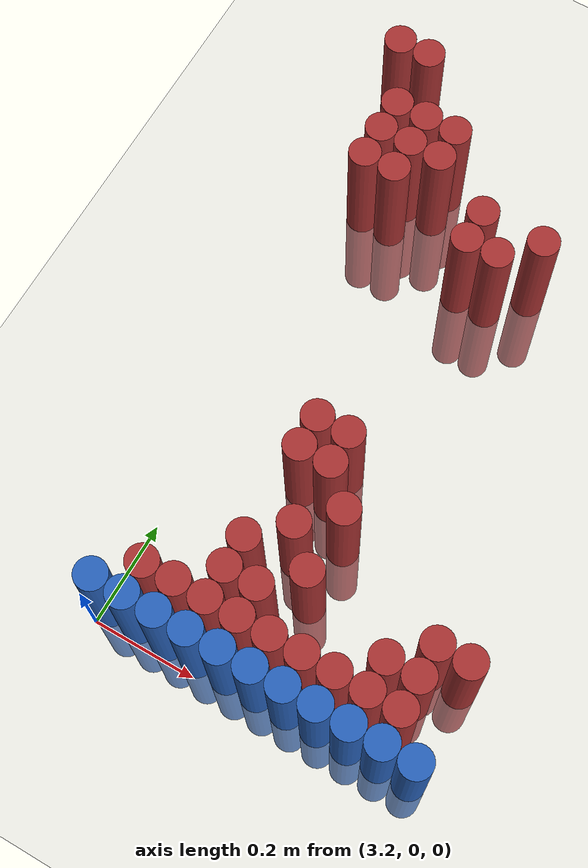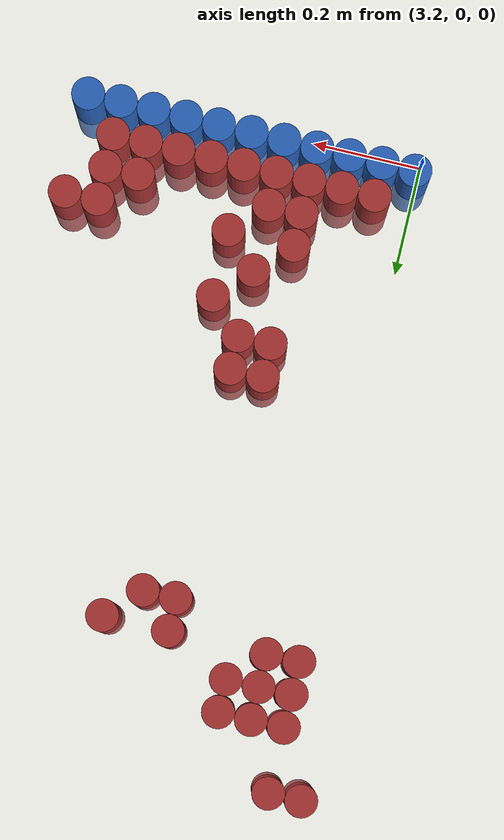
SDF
<sdf version="1.6">
 <world name="default">
  <model name="ground_plane">
   <static>1</static>
   <link name="link">
    <collision name="collision">
     <geometry><plane><normal>0 0 1</normal><size>100 100</size></plane></geometry>
     <surface><friction><ode><mu>100</mu><mu2>50</mu2></ode></friction></surface>
    </collision>
    <visual name="visual">
     <cast_shadows>0</cast_shadows>
     <geometry><plane><normal>0 0 1</normal><size>100 100</size></plane></geometry>
     <material>
      <script><uri>file://media/materials/scripts/gazebo.material</uri><name>Gazebo/Grey</name></script>
     </material>
    </visual>
   </link>
  </model>
  <model name="unit_cylinder_217">
   <static>1</static>
   <pose>3.150000 1.170000 0.000000 0.000000 0.000000 0.000000</pose>
   <link name="link">
    <inertial>
     <mass>1</mass>
     <inertia><ixx>0.145833</ixx><ixy>0</ixy><ixz>0</ixz><iyy>0.145833</iyy><iyz>0</iyz><izz>0.125</izz></inertia>
    </inertial>
    <collision name="collision">
     <geometry><cylinder><radius>0.030000</radius><length>0.5</length></cylinder></geometry>
    </collision>
    <visual name="visual">
     <geometry><cylinder><radius>0.030000</radius><length>0.5</length></cylinder></geometry>
     <material>
      <ambient>0.648000 0.192000 0.192000 1</ambient>
      <diffuse>0.648000 0.192000 0.192000 1</diffuse>
     </material>
     <material>
      <script><name>Gazebo/Grey</name><uri>file://media/materials/scripts/gazebo.material</uri></script>
     </material>
    </visual>
   </link>
  </model>
  <model name="unit_cylinder_218">
   <static>1</static>
   <pose>3.210000 1.170000 0.000000 0.000000 0.000000 0.000000</pose>
   <link name="link">
    <inertial>
     <mass>1</mass>
     <inertia><ixx>0.145833</ixx><ixy>0</ixy><ixz>0</ixz><iyy>0.145833</iyy><iyz>0</iyz><izz>0.125</izz></inertia>
    </inertial>
    <collision name="collision">
     <geometry><cylinder><radius>0.030000</radius><length>0.5</length></cylinder></geometry>
    </collision>
    <visual name="visual">
     <geometry><cylinder><radius>0.030000</radius><length>0.5</length></cylinder></geometry>
     <material>
      <ambient>0.648000 0.192000 0.192000 1</ambient>
      <diffuse>0.648000 0.192000 0.192000 1</diffuse>
     </material>
     <material>
      <script><name>Gazebo/Grey</name><uri>file://media/materials/scripts/gazebo.material</uri></script>
     </material>
    </visual>
   </link>
  </model>
  <model name="unit_cylinder_227">
   <static>1</static>
   <pose>3.210000 1.050000 0.000000 0.000000 0.000000 0.000000</pose>
   <link name="link">
    <inertial>
     <mass>1</mass>
     <inertia><ixx>0.145833</ixx><ixy>0</ixy><ixz>0</ixz><iyy>0.145833</iyy><iyz>0</iyz><izz>0.125</izz></inertia>
    </inertial>
    <collision name="collision">
     <geometry><cylinder><radius>0.030000</radius><length>0.5</length></cylinder></geometry>
    </collision>
    <visual name="visual">
     <geometry><cylinder><radius>0.030000</radius><length>0.5</length></cylinder></geometry>
     <material>
      <ambient>0.648000 0.192000 0.192000 1</ambient>
      <diffuse>0.648000 0.192000 0.192000 1</diffuse>
     </material>
     <material>
      <script><name>Gazebo/Grey</name><uri>file://media/materials/scripts/gazebo.material</uri></script>
     </material>
    </visual>
   </link>
  </model>
  <model name="unit_cylinder_228">
   <static>1</static>
   <pose>3.270000 1.050000 0.000000 0.000000 0.000000 0.000000</pose>
   <link name="link">
    <inertial>
     <mass>1</mass>
     <inertia><ixx>0.145833</ixx><ixy>0</ixy><ixz>0</ixz><iyy>0.145833</iyy><iyz>0</iyz><izz>0.125</izz></inertia>
    </inertial>
    <collision name="collision">
     <geometry><cylinder><radius>0.030000</radius><length>0.5</length></cylinder></geometry>
    </collision>
    <visual name="visual">
     <geometry><cylinder><radius>0.030000</radius><length>0.5</length></cylinder></geometry>
     <material>
      <ambient>0.648000 0.192000 0.192000 1</ambient>
      <diffuse>0.648000 0.192000 0.192000 1</diffuse>
     </material>
     <material>
      <script><name>Gazebo/Grey</name><uri>file://media/materials/scripts/gazebo.material</uri></script>
     </material>
    </visual>
   </link>
  </model>
  <model name="unit_cylinder_229">
   <static>1</static>
   <pose>3.330000 1.050000 0.000000 0.000000 0.000000 0.000000</pose>
   <link name="link">
    <inertial>
     <mass>1</mass>
     <inertia><ixx>0.145833</ixx><ixy>0</ixy><ixz>0</ixz><iyy>0.145833</iyy><iyz>0</iyz><izz>0.125</izz></inertia>
    </inertial>
    <collision name="collision">
     <geometry><cylinder><radius>0.030000</radius><length>0.5</length></cylinder></geometry>
    </collision>
    <visual name="visual">
     <geometry><cylinder><radius>0.030000</radius><length>0.5</length></cylinder></geometry>
     <material>
      <ambient>0.648000 0.192000 0.192000 1</ambient>
      <diffuse>0.648000 0.192000 0.192000 1</diffuse>
     </material>
     <material>
      <script><name>Gazebo/Grey</name><uri>file://media/materials/scripts/gazebo.material</uri></script>
     </material>
    </visual>
   </link>
  </model>
  <model name="unit_cylinder_231">
   <static>1</static>
   <pose>3.210000 0.990000 0.000000 0.000000 0.000000 0.000000</pose>
   <link name="link">
    <inertial>
     <mass>1</mass>
     <inertia><ixx>0.145833</ixx><ixy>0</ixy><ixz>0</ixz><iyy>0.145833</iyy><iyz>0</iyz><izz>0.125</izz></inertia>
    </inertial>
    <collision name="collision">
     <geometry><cylinder><radius>0.030000</radius><length>0.5</length></cylinder></geometry>
    </collision>
    <visual name="visual">
     <geometry><cylinder><radius>0.030000</radius><length>0.5</length></cylinder></geometry>
     <material>
      <ambient>0.648000 0.192000 0.192000 1</ambient>
      <diffuse>0.648000 0.192000 0.192000 1</diffuse>
     </material>
     <material>
      <script><name>Gazebo/Grey</name><uri>file://media/materials/scripts/gazebo.material</uri></script>
     </material>
    </visual>
   </link>
  </model>
  <model name="unit_cylinder_232">
   <static>1</static>
   <pose>3.270000 0.990000 0.000000 0.000000 0.000000 0.000000</pose>
   <link name="link">
    <inertial>
     <mass>1</mass>
     <inertia><ixx>0.145833</ixx><ixy>0</ixy><ixz>0</ixz><iyy>0.145833</iyy><iyz>0</iyz><izz>0.125</izz></inertia>
    </inertial>
    <collision name="collision">
     <geometry><cylinder><radius>0.030000</radius><length>0.5</length></cylinder></geometry>
    </collision>
    <visual name="visual">
     <geometry><cylinder><radius>0.030000</radius><length>0.5</length></cylinder></geometry>
     <material>
      <ambient>0.648000 0.192000 0.192000 1</ambient>
      <diffuse>0.648000 0.192000 0.192000 1</diffuse>
     </material>
     <material>
      <script><name>Gazebo/Grey</name><uri>file://media/materials/scripts/gazebo.material</uri></script>
     </material>
    </visual>
   </link>
  </model>
  <model name="unit_cylinder_233">
   <static>1</static>
   <pose>3.330000 0.990000 0.000000 0.000000 0.000000 0.000000</pose>
   <link name="link">
    <inertial>
     <mass>1</mass>
     <inertia><ixx>0.145833</ixx><ixy>0</ixy><ixz>0</ixz><iyy>0.145833</iyy><iyz>0</iyz><izz>0.125</izz></inertia>
    </inertial>
    <collision name="collision">
     <geometry><cylinder><radius>0.030000</radius><length>0.5</length></cylinder></geometry>
    </collision>
    <visual name="visual">
     <geometry><cylinder><radius>0.030000</radius><length>0.5</length></cylinder></geometry>
     <material>
      <ambient>0.648000 0.192000 0.192000 1</ambient>
      <diffuse>0.648000 0.192000 0.192000 1</diffuse>
     </material>
     <material>
      <script><name>Gazebo/Grey</name><uri>file://media/materials/scripts/gazebo.material</uri></script>
     </material>
    </visual>
   </link>
  </model>
  <model name="unit_cylinder_235">
   <static>1</static>
   <pose>3.210000 0.930000 0.000000 0.000000 0.000000 0.000000</pose>
   <link name="link">
    <inertial>
     <mass>1</mass>
     <inertia><ixx>0.145833</ixx><ixy>0</ixy><ixz>0</ixz><iyy>0.145833</iyy><iyz>0</iyz><izz>0.125</izz></inertia>
    </inertial>
    <collision name="collision">
     <geometry><cylinder><radius>0.030000</radius><length>0.5</length></cylinder></geometry>
    </collision>
    <visual name="visual">
     <geometry><cylinder><radius>0.030000</radius><length>0.5</length></cylinder></geometry>
     <material>
      <ambient>0.648000 0.192000 0.192000 1</ambient>
      <diffuse>0.648000 0.192000 0.192000 1</diffuse>
     </material>
     <material>
      <script><name>Gazebo/Grey</name><uri>file://media/materials/scripts/gazebo.material</uri></script>
     </material>
    </visual>
   </link>
  </model>
  <model name="unit_cylinder_236">
   <static>1</static>
   <pose>3.270000 0.930000 0.000000 0.000000 0.000000 0.000000</pose>
   <link name="link">
    <inertial>
     <mass>1</mass>
     <inertia><ixx>0.145833</ixx><ixy>0</ixy><ixz>0</ixz><iyy>0.145833</iyy><iyz>0</iyz><izz>0.125</izz></inertia>
    </inertial>
    <collision name="collision">
     <geometry><cylinder><radius>0.030000</radius><length>0.5</length></cylinder></geometry>
    </collision>
    <visual name="visual">
     <geometry><cylinder><radius>0.030000</radius><length>0.5</length></cylinder></geometry>
     <material>
      <ambient>0.648000 0.192000 0.192000 1</ambient>
      <diffuse>0.648000 0.192000 0.192000 1</diffuse>
     </material>
     <material>
      <script><name>Gazebo/Grey</name><uri>file://media/materials/scripts/gazebo.material</uri></script>
     </material>
    </visual>
   </link>
  </model>
  <model name="unit_cylinder_237">
   <static>1</static>
   <pose>3.450000 0.930000 0.000000 0.000000 0.000000 0.000000</pose>
   <link name="link">
    <inertial>
     <mass>1</mass>
     <inertia><ixx>0.145833</ixx><ixy>0</ixy><ixz>0</ixz><iyy>0.145833</iyy><iyz>0</iyz><izz>0.125</izz></inertia>
    </inertial>
    <collision name="collision">
     <geometry><cylinder><radius>0.030000</radius><length>0.5</length></cylinder></geometry>
    </collision>
    <visual name="visual">
     <geometry><cylinder><radius>0.030000</radius><length>0.5</length></cylinder></geometry>
     <material>
      <ambient>0.648000 0.192000 0.192000 1</ambient>
      <diffuse>0.648000 0.192000 0.192000 1</diffuse>
     </material>
     <material>
      <script><name>Gazebo/Grey</name><uri>file://media/materials/scripts/gazebo.material</uri></script>
     </material>
    </visual>
   </link>
  </model>
  <model name="unit_cylinder_238">
   <static>1</static>
   <pose>3.570000 0.930000 0.000000 0.000000 0.000000 0.000000</pose>
   <link name="link">
    <inertial>
     <mass>1</mass>
     <inertia><ixx>0.145833</ixx><ixy>0</ixy><ixz>0</ixz><iyy>0.145833</iyy><iyz>0</iyz><izz>0.125</izz></inertia>
    </inertial>
    <collision name="collision">
     <geometry><cylinder><radius>0.030000</radius><length>0.5</length></cylinder></geometry>
    </collision>
    <visual name="visual">
     <geometry><cylinder><radius>0.030000</radius><length>0.5</length></cylinder></geometry>
     <material>
      <ambient>0.648000 0.192000 0.192000 1</ambient>
      <diffuse>0.648000 0.192000 0.192000 1</diffuse>
     </material>
     <material>
      <script><name>Gazebo/Grey</name><uri>file://media/materials/scripts/gazebo.material</uri></script>
     </material>
    </visual>
   </link>
  </model>
  <model name="unit_cylinder_239">
   <static>1</static>
   <pose>3.450000 0.870000 0.000000 0.000000 0.000000 0.000000</pose>
   <link name="link">
    <inertial>
     <mass>1</mass>
     <inertia><ixx>0.145833</ixx><ixy>0</ixy><ixz>0</ixz><iyy>0.145833</iyy><iyz>0</iyz><izz>0.125</izz></inertia>
    </inertial>
    <collision name="collision">
     <geometry><cylinder><radius>0.030000</radius><length>0.5</length></cylinder></geometry>
    </collision>
    <visual name="visual">
     <geometry><cylinder><radius>0.030000</radius><length>0.5</length></cylinder></geometry>
     <material>
      <ambient>0.648000 0.192000 0.192000 1</ambient>
      <diffuse>0.648000 0.192000 0.192000 1</diffuse>
     </material>
     <material>
      <script><name>Gazebo/Grey</name><uri>file://media/materials/scripts/gazebo.material</uri></script>
     </material>
    </visual>
   </link>
  </model>
  <model name="unit_cylinder_240">
   <static>1</static>
   <pose>3.510000 0.870000 0.000000 0.000000 0.000000 0.000000</pose>
   <link name="link">
    <inertial>
     <mass>1</mass>
     <inertia><ixx>0.145833</ixx><ixy>0</ixy><ixz>0</ixz><iyy>0.145833</iyy><iyz>0</iyz><izz>0.125</izz></inertia>
    </inertial>
    <collision name="collision">
     <geometry><cylinder><radius>0.030000</radius><length>0.5</length></cylinder></geometry>
    </collision>
    <visual name="visual">
     <geometry><cylinder><radius>0.030000</radius><length>0.5</length></cylinder></geometry>
     <material>
      <ambient>0.648000 0.192000 0.192000 1</ambient>
      <diffuse>0.648000 0.192000 0.192000 1</diffuse>
     </material>
     <material>
      <script><name>Gazebo/Grey</name><uri>file://media/materials/scripts/gazebo.material</uri></script>
     </material>
    </visual>
   </link>
  </model>
  <model name="unit_cylinder_262">
   <static>1</static>
   <pose>3.390000 0.450000 0.000000 0.000000 0.000000 0.000000</pose>
   <link name="link">
    <inertial>
     <mass>1</mass>
     <inertia><ixx>0.145833</ixx><ixy>0</ixy><ixz>0</ixz><iyy>0.145833</iyy><iyz>0</iyz><izz>0.125</izz></inertia>
    </inertial>
    <collision name="collision">
     <geometry><cylinder><radius>0.030000</radius><length>0.5</length></cylinder></geometry>
    </collision>
    <visual name="visual">
     <geometry><cylinder><radius>0.030000</radius><length>0.5</length></cylinder></geometry>
     <material>
      <ambient>0.648000 0.192000 0.192000 1</ambient>
      <diffuse>0.648000 0.192000 0.192000 1</diffuse>
     </material>
     <material>
      <script><name>Gazebo/Grey</name><uri>file://media/materials/scripts/gazebo.material</uri></script>
     </material>
    </visual>
   </link>
  </model>
  <model name="unit_cylinder_263">
   <static>1</static>
   <pose>3.450000 0.450000 0.000000 0.000000 0.000000 0.000000</pose>
   <link name="link">
    <inertial>
     <mass>1</mass>
     <inertia><ixx>0.145833</ixx><ixy>0</ixy><ixz>0</ixz><iyy>0.145833</iyy><iyz>0</iyz><izz>0.125</izz></inertia>
    </inertial>
    <collision name="collision">
     <geometry><cylinder><radius>0.030000</radius><length>0.5</length></cylinder></geometry>
    </collision>
    <visual name="visual">
     <geometry><cylinder><radius>0.030000</radius><length>0.5</length></cylinder></geometry>
     <material>
      <ambient>0.648000 0.192000 0.192000 1</ambient>
      <diffuse>0.648000 0.192000 0.192000 1</diffuse>
     </material>
     <material>
      <script><name>Gazebo/Grey</name><uri>file://media/materials/scripts/gazebo.material</uri></script>
     </material>
    </visual>
   </link>
  </model>
  <model name="unit_cylinder_265">
   <static>1</static>
   <pose>3.390000 0.390000 0.000000 0.000000 0.000000 0.000000</pose>
   <link name="link">
    <inertial>
     <mass>1</mass>
     <inertia><ixx>0.145833</ixx><ixy>0</ixy><ixz>0</ixz><iyy>0.145833</iyy><iyz>0</iyz><izz>0.125</izz></inertia>
    </inertial>
    <collision name="collision">
     <geometry><cylinder><radius>0.030000</radius><length>0.5</length></cylinder></geometry>
    </collision>
    <visual name="visual">
     <geometry><cylinder><radius>0.030000</radius><length>0.5</length></cylinder></geometry>
     <material>
      <ambient>0.648000 0.192000 0.192000 1</ambient>
      <diffuse>0.648000 0.192000 0.192000 1</diffuse>
     </material>
     <material>
      <script><name>Gazebo/Grey</name><uri>file://media/materials/scripts/gazebo.material</uri></script>
     </material>
    </visual>
   </link>
  </model>
  <model name="unit_cylinder_266">
   <static>1</static>
   <pose>3.450000 0.390000 0.000000 0.000000 0.000000 0.000000</pose>
   <link name="link">
    <inertial>
     <mass>1</mass>
     <inertia><ixx>0.145833</ixx><ixy>0</ixy><ixz>0</ixz><iyy>0.145833</iyy><iyz>0</iyz><izz>0.125</izz></inertia>
    </inertial>
    <collision name="collision">
     <geometry><cylinder><radius>0.030000</radius><length>0.5</length></cylinder></geometry>
    </collision>
    <visual name="visual">
     <geometry><cylinder><radius>0.030000</radius><length>0.5</length></cylinder></geometry>
     <material>
      <ambient>0.648000 0.192000 0.192000 1</ambient>
      <diffuse>0.648000 0.192000 0.192000 1</diffuse>
     </material>
     <material>
      <script><name>Gazebo/Grey</name><uri>file://media/materials/scripts/gazebo.material</uri></script>
     </material>
    </visual>
   </link>
  </model>
  <model name="unit_cylinder_267">
   <static>1</static>
   <pose>3.510000 0.330000 0.000000 0.000000 0.000000 0.000000</pose>
   <link name="link">
    <inertial>
     <mass>1</mass>
     <inertia><ixx>0.145833</ixx><ixy>0</ixy><ixz>0</ixz><iyy>0.145833</iyy><iyz>0</iyz><izz>0.125</izz></inertia>
    </inertial>
    <collision name="collision">
     <geometry><cylinder><radius>0.030000</radius><length>0.5</length></cylinder></geometry>
    </collision>
    <visual name="visual">
     <geometry><cylinder><radius>0.030000</radius><length>0.5</length></cylinder></geometry>
     <material>
      <ambient>0.648000 0.192000 0.192000 1</ambient>
      <diffuse>0.648000 0.192000 0.192000 1</diffuse>
     </material>
     <material>
      <script><name>Gazebo/Grey</name><uri>file://media/materials/scripts/gazebo.material</uri></script>
     </material>
    </visual>
   </link>
  </model>
  <model name="unit_cylinder_269">
   <static>1</static>
   <pose>3.450000 0.270000 0.000000 0.000000 0.000000 0.000000</pose>
   <link name="link">
    <inertial>
     <mass>1</mass>
     <inertia><ixx>0.145833</ixx><ixy>0</ixy><ixz>0</ixz><iyy>0.145833</iyy><iyz>0</iyz><izz>0.125</izz></inertia>
    </inertial>
    <collision name="collision">
     <geometry><cylinder><radius>0.030000</radius><length>0.5</length></cylinder></geometry>
    </collision>
    <visual name="visual">
     <geometry><cylinder><radius>0.030000</radius><length>0.5</length></cylinder></geometry>
     <material>
      <ambient>0.648000 0.192000 0.192000 1</ambient>
      <diffuse>0.648000 0.192000 0.192000 1</diffuse>
     </material>
     <material>
      <script><name>Gazebo/Grey</name><uri>file://media/materials/scripts/gazebo.material</uri></script>
     </material>
    </visual>
   </link>
  </model>
  <model name="unit_cylinder_273">
   <static>1</static>
   <pose>3.390000 0.210000 0.000000 0.000000 0.000000 0.000000</pose>
   <link name="link">
    <inertial>
     <mass>1</mass>
     <inertia><ixx>0.145833</ixx><ixy>0</ixy><ixz>0</ixz><iyy>0.145833</iyy><iyz>0</iyz><izz>0.125</izz></inertia>
    </inertial>
    <collision name="collision">
     <geometry><cylinder><radius>0.030000</radius><length>0.5</length></cylinder></geometry>
    </collision>
    <visual name="visual">
     <geometry><cylinder><radius>0.030000</radius><length>0.5</length></cylinder></geometry>
     <material>
      <ambient>0.648000 0.192000 0.192000 1</ambient>
      <diffuse>0.648000 0.192000 0.192000 1</diffuse>
     </material>
     <material>
      <script><name>Gazebo/Grey</name><uri>file://media/materials/scripts/gazebo.material</uri></script>
     </material>
    </visual>
   </link>
  </model>
  <model name="unit_cylinder_274">
   <static>1</static>
   <pose>3.510000 0.210000 0.000000 0.000000 0.000000 0.000000</pose>
   <link name="link">
    <inertial>
     <mass>1</mass>
     <inertia><ixx>0.145833</ixx><ixy>0</ixy><ixz>0</ixz><iyy>0.145833</iyy><iyz>0</iyz><izz>0.125</izz></inertia>
    </inertial>
    <collision name="collision">
     <geometry><cylinder><radius>0.030000</radius><length>0.5</length></cylinder></geometry>
    </collision>
    <visual name="visual">
     <geometry><cylinder><radius>0.030000</radius><length>0.5</length></cylinder></geometry>
     <material>
      <ambient>0.648000 0.192000 0.192000 1</ambient>
      <diffuse>0.648000 0.192000 0.192000 1</diffuse>
     </material>
     <material>
      <script><name>Gazebo/Grey</name><uri>file://media/materials/scripts/gazebo.material</uri></script>
     </material>
    </visual>
   </link>
  </model>
  <model name="unit_cylinder_275">
   <static>1</static>
   <pose>3.750000 0.210000 0.000000 0.000000 0.000000 0.000000</pose>
   <link name="link">
    <inertial>
     <mass>1</mass>
     <inertia><ixx>0.145833</ixx><ixy>0</ixy><ixz>0</ixz><iyy>0.145833</iyy><iyz>0</iyz><izz>0.125</izz></inertia>
    </inertial>
    <collision name="collision">
     <geometry><cylinder><radius>0.030000</radius><length>0.5</length></cylinder></geometry>
    </collision>
    <visual name="visual">
     <geometry><cylinder><radius>0.030000</radius><length>0.5</length></cylinder></geometry>
     <material>
      <ambient>0.648000 0.192000 0.192000 1</ambient>
      <diffuse>0.648000 0.192000 0.192000 1</diffuse>
     </material>
     <material>
      <script><name>Gazebo/Grey</name><uri>file://media/materials/scripts/gazebo.material</uri></script>
     </material>
    </visual>
   </link>
  </model>
  <model name="unit_cylinder_276">
   <static>1</static>
   <pose>3.810000 0.210000 0.000000 0.000000 0.000000 0.000000</pose>
   <link name="link">
    <inertial>
     <mass>1</mass>
     <inertia><ixx>0.145833</ixx><ixy>0</ixy><ixz>0</ixz><iyy>0.145833</iyy><iyz>0</iyz><izz>0.125</izz></inertia>
    </inertial>
    <collision name="collision">
     <geometry><cylinder><radius>0.030000</radius><length>0.5</length></cylinder></geometry>
    </collision>
    <visual name="visual">
     <geometry><cylinder><radius>0.030000</radius><length>0.5</length></cylinder></geometry>
     <material>
      <ambient>0.648000 0.192000 0.192000 1</ambient>
      <diffuse>0.648000 0.192000 0.192000 1</diffuse>
     </material>
     <material>
      <script><name>Gazebo/Grey</name><uri>file://media/materials/scripts/gazebo.material</uri></script>
     </material>
    </visual>
   </link>
  </model>
  <model name="unit_cylinder_285">
   <static>1</static>
   <pose>3.390000 0.150000 0.000000 0.000000 0.000000 0.000000</pose>
   <link name="link">
    <inertial>
     <mass>1</mass>
     <inertia><ixx>0.145833</ixx><ixy>0</ixy><ixz>0</ixz><iyy>0.145833</iyy><iyz>0</iyz><izz>0.125</izz></inertia>
    </inertial>
    <collision name="collision">
     <geometry><cylinder><radius>0.030000</radius><length>0.5</length></cylinder></geometry>
    </collision>
    <visual name="visual">
     <geometry><cylinder><radius>0.030000</radius><length>0.5</length></cylinder></geometry>
     <material>
      <ambient>0.648000 0.192000 0.192000 1</ambient>
      <diffuse>0.648000 0.192000 0.192000 1</diffuse>
     </material>
     <material>
      <script><name>Gazebo/Grey</name><uri>file://media/materials/scripts/gazebo.material</uri></script>
     </material>
    </visual>
   </link>
  </model>
  <model name="unit_cylinder_286">
   <static>1</static>
   <pose>3.450000 0.150000 0.000000 0.000000 0.000000 0.000000</pose>
   <link name="link">
    <inertial>
     <mass>1</mass>
     <inertia><ixx>0.145833</ixx><ixy>0</ixy><ixz>0</ixz><iyy>0.145833</iyy><iyz>0</iyz><izz>0.125</izz></inertia>
    </inertial>
    <collision name="collision">
     <geometry><cylinder><radius>0.030000</radius><length>0.5</length></cylinder></geometry>
    </collision>
    <visual name="visual">
     <geometry><cylinder><radius>0.030000</radius><length>0.5</length></cylinder></geometry>
     <material>
      <ambient>0.648000 0.192000 0.192000 1</ambient>
      <diffuse>0.648000 0.192000 0.192000 1</diffuse>
     </material>
     <material>
      <script><name>Gazebo/Grey</name><uri>file://media/materials/scripts/gazebo.material</uri></script>
     </material>
    </visual>
   </link>
  </model>
  <model name="unit_cylinder_287">
   <static>1</static>
   <pose>3.690000 0.150000 0.000000 0.000000 0.000000 0.000000</pose>
   <link name="link">
    <inertial>
     <mass>1</mass>
     <inertia><ixx>0.145833</ixx><ixy>0</ixy><ixz>0</ixz><iyy>0.145833</iyy><iyz>0</iyz><izz>0.125</izz></inertia>
    </inertial>
    <collision name="collision">
     <geometry><cylinder><radius>0.030000</radius><length>0.5</length></cylinder></geometry>
    </collision>
    <visual name="visual">
     <geometry><cylinder><radius>0.030000</radius><length>0.5</length></cylinder></geometry>
     <material>
      <ambient>0.648000 0.192000 0.192000 1</ambient>
      <diffuse>0.648000 0.192000 0.192000 1</diffuse>
     </material>
     <material>
      <script><name>Gazebo/Grey</name><uri>file://media/materials/scripts/gazebo.material</uri></script>
     </material>
    </visual>
   </link>
  </model>
  <model name="unit_cylinder_288">
   <static>1</static>
   <pose>3.750000 0.150000 0.000000 0.000000 0.000000 0.000000</pose>
   <link name="link">
    <inertial>
     <mass>1</mass>
     <inertia><ixx>0.145833</ixx><ixy>0</ixy><ixz>0</ixz><iyy>0.145833</iyy><iyz>0</iyz><izz>0.125</izz></inertia>
    </inertial>
    <collision name="collision">
     <geometry><cylinder><radius>0.030000</radius><length>0.5</length></cylinder></geometry>
    </collision>
    <visual name="visual">
     <geometry><cylinder><radius>0.030000</radius><length>0.5</length></cylinder></geometry>
     <material>
      <ambient>0.648000 0.192000 0.192000 1</ambient>
      <diffuse>0.648000 0.192000 0.192000 1</diffuse>
     </material>
     <material>
      <script><name>Gazebo/Grey</name><uri>file://media/materials/scripts/gazebo.material</uri></script>
     </material>
    </visual>
   </link>
  </model>
  <model name="unit_cylinder_294">
   <static>1</static>
   <pose>3.270000 0.090000 0.000000 0.000000 0.000000 0.000000</pose>
   <link name="link">
    <inertial>
     <mass>1</mass>
     <inertia><ixx>0.145833</ixx><ixy>0</ixy><ixz>0</ixz><iyy>0.145833</iyy><iyz>0</iyz><izz>0.125</izz></inertia>
    </inertial>
    <collision name="collision">
     <geometry><cylinder><radius>0.030000</radius><length>0.5</length></cylinder></geometry>
    </collision>
    <visual name="visual">
     <geometry><cylinder><radius>0.030000</radius><length>0.5</length></cylinder></geometry>
     <material>
      <ambient>0.648000 0.192000 0.192000 1</ambient>
      <diffuse>0.648000 0.192000 0.192000 1</diffuse>
     </material>
     <material>
      <script><name>Gazebo/Grey</name><uri>file://media/materials/scripts/gazebo.material</uri></script>
     </material>
    </visual>
   </link>
  </model>
  <model name="unit_cylinder_295">
   <static>1</static>
   <pose>3.330000 0.090000 0.000000 0.000000 0.000000 0.000000</pose>
   <link name="link">
    <inertial>
     <mass>1</mass>
     <inertia><ixx>0.145833</ixx><ixy>0</ixy><ixz>0</ixz><iyy>0.145833</iyy><iyz>0</iyz><izz>0.125</izz></inertia>
    </inertial>
    <collision name="collision">
     <geometry><cylinder><radius>0.030000</radius><length>0.5</length></cylinder></geometry>
    </collision>
    <visual name="visual">
     <geometry><cylinder><radius>0.030000</radius><length>0.5</length></cylinder></geometry>
     <material>
      <ambient>0.648000 0.192000 0.192000 1</ambient>
      <diffuse>0.648000 0.192000 0.192000 1</diffuse>
     </material>
     <material>
      <script><name>Gazebo/Grey</name><uri>file://media/materials/scripts/gazebo.material</uri></script>
     </material>
    </visual>
   </link>
  </model>
  <model name="unit_cylinder_296">
   <static>1</static>
   <pose>3.390000 0.090000 0.000000 0.000000 0.000000 0.000000</pose>
   <link name="link">
    <inertial>
     <mass>1</mass>
     <inertia><ixx>0.145833</ixx><ixy>0</ixy><ixz>0</ixz><iyy>0.145833</iyy><iyz>0</iyz><izz>0.125</izz></inertia>
    </inertial>
    <collision name="collision">
     <geometry><cylinder><radius>0.030000</radius><length>0.5</length></cylinder></geometry>
    </collision>
    <visual name="visual">
     <geometry><cylinder><radius>0.030000</radius><length>0.5</length></cylinder></geometry>
     <material>
      <ambient>0.648000 0.192000 0.192000 1</ambient>
      <diffuse>0.648000 0.192000 0.192000 1</diffuse>
     </material>
     <material>
      <script><name>Gazebo/Grey</name><uri>file://media/materials/scripts/gazebo.material</uri></script>
     </material>
    </visual>
   </link>
  </model>
  <model name="unit_cylinder_297">
   <static>1</static>
   <pose>3.450000 0.090000 0.000000 0.000000 0.000000 0.000000</pose>
   <link name="link">
    <inertial>
     <mass>1</mass>
     <inertia><ixx>0.145833</ixx><ixy>0</ixy><ixz>0</ixz><iyy>0.145833</iyy><iyz>0</iyz><izz>0.125</izz></inertia>
    </inertial>
    <collision name="collision">
     <geometry><cylinder><radius>0.030000</radius><length>0.5</length></cylinder></geometry>
    </collision>
    <visual name="visual">
     <geometry><cylinder><radius>0.030000</radius><length>0.5</length></cylinder></geometry>
     <material>
      <ambient>0.648000 0.192000 0.192000 1</ambient>
      <diffuse>0.648000 0.192000 0.192000 1</diffuse>
     </material>
     <material>
      <script><name>Gazebo/Grey</name><uri>file://media/materials/scripts/gazebo.material</uri></script>
     </material>
    </visual>
   </link>
  </model>
  <model name="unit_cylinder_298">
   <static>1</static>
   <pose>3.510000 0.090000 0.000000 0.000000 0.000000 0.000000</pose>
   <link name="link">
    <inertial>
     <mass>1</mass>
     <inertia><ixx>0.145833</ixx><ixy>0</ixy><ixz>0</ixz><iyy>0.145833</iyy><iyz>0</iyz><izz>0.125</izz></inertia>
    </inertial>
    <collision name="collision">
     <geometry><cylinder><radius>0.030000</radius><length>0.5</length></cylinder></geometry>
    </collision>
    <visual name="visual">
     <geometry><cylinder><radius>0.030000</radius><length>0.5</length></cylinder></geometry>
     <material>
      <ambient>0.648000 0.192000 0.192000 1</ambient>
      <diffuse>0.648000 0.192000 0.192000 1</diffuse>
     </material>
     <material>
      <script><name>Gazebo/Grey</name><uri>file://media/materials/scripts/gazebo.material</uri></script>
     </material>
    </visual>
   </link>
  </model>
  <model name="unit_cylinder_299">
   <static>1</static>
   <pose>3.570000 0.090000 0.000000 0.000000 0.000000 0.000000</pose>
   <link name="link">
    <inertial>
     <mass>1</mass>
     <inertia><ixx>0.145833</ixx><ixy>0</ixy><ixz>0</ixz><iyy>0.145833</iyy><iyz>0</iyz><izz>0.125</izz></inertia>
    </inertial>
    <collision name="collision">
     <geometry><cylinder><radius>0.030000</radius><length>0.5</length></cylinder></geometry>
    </collision>
    <visual name="visual">
     <geometry><cylinder><radius>0.030000</radius><length>0.5</length></cylinder></geometry>
     <material>
      <ambient>0.648000 0.192000 0.192000 1</ambient>
      <diffuse>0.648000 0.192000 0.192000 1</diffuse>
     </material>
     <material>
      <script><name>Gazebo/Grey</name><uri>file://media/materials/scripts/gazebo.material</uri></script>
     </material>
    </visual>
   </link>
  </model>
  <model name="unit_cylinder_300">
   <static>1</static>
   <pose>3.630000 0.090000 0.000000 0.000000 0.000000 0.000000</pose>
   <link name="link">
    <inertial>
     <mass>1</mass>
     <inertia><ixx>0.145833</ixx><ixy>0</ixy><ixz>0</ixz><iyy>0.145833</iyy><iyz>0</iyz><izz>0.125</izz></inertia>
    </inertial>
    <collision name="collision">
     <geometry><cylinder><radius>0.030000</radius><length>0.5</length></cylinder></geometry>
    </collision>
    <visual name="visual">
     <geometry><cylinder><radius>0.030000</radius><length>0.5</length></cylinder></geometry>
     <material>
      <ambient>0.648000 0.192000 0.192000 1</ambient>
      <diffuse>0.648000 0.192000 0.192000 1</diffuse>
     </material>
     <material>
      <script><name>Gazebo/Grey</name><uri>file://media/materials/scripts/gazebo.material</uri></script>
     </material>
    </visual>
   </link>
  </model>
  <model name="unit_cylinder_301">
   <static>1</static>
   <pose>3.690000 0.090000 0.000000 0.000000 0.000000 0.000000</pose>
   <link name="link">
    <inertial>
     <mass>1</mass>
     <inertia><ixx>0.145833</ixx><ixy>0</ixy><ixz>0</ixz><iyy>0.145833</iyy><iyz>0</iyz><izz>0.125</izz></inertia>
    </inertial>
    <collision name="collision">
     <geometry><cylinder><radius>0.030000</radius><length>0.5</length></cylinder></geometry>
    </collision>
    <visual name="visual">
     <geometry><cylinder><radius>0.030000</radius><length>0.5</length></cylinder></geometry>
     <material>
      <ambient>0.648000 0.192000 0.192000 1</ambient>
      <diffuse>0.648000 0.192000 0.192000 1</diffuse>
     </material>
     <material>
      <script><name>Gazebo/Grey</name><uri>file://media/materials/scripts/gazebo.material</uri></script>
     </material>
    </visual>
   </link>
  </model>
  <model name="unit_cylinder_302">
   <static>1</static>
   <pose>3.750000 0.090000 0.000000 0.000000 0.000000 0.000000</pose>
   <link name="link">
    <inertial>
     <mass>1</mass>
     <inertia><ixx>0.145833</ixx><ixy>0</ixy><ixz>0</ixz><iyy>0.145833</iyy><iyz>0</iyz><izz>0.125</izz></inertia>
    </inertial>
    <collision name="collision">
     <geometry><cylinder><radius>0.030000</radius><length>0.5</length></cylinder></geometry>
    </collision>
    <visual name="visual">
     <geometry><cylinder><radius>0.030000</radius><length>0.5</length></cylinder></geometry>
     <material>
      <ambient>0.648000 0.192000 0.192000 1</ambient>
      <diffuse>0.648000 0.192000 0.192000 1</diffuse>
     </material>
     <material>
      <script><name>Gazebo/Grey</name><uri>file://media/materials/scripts/gazebo.material</uri></script>
     </material>
    </visual>
   </link>
  </model>
  <model name="unit_cylinder_322">
   <static>1</static>
   <pose>3.210000 0.030000 0.000000 0.000000 0.000000 0.000000</pose>
   <link name="link">
    <inertial>
     <mass>1</mass>
     <inertia><ixx>0.145833</ixx><ixy>0</ixy><ixz>0</ixz><iyy>0.145833</iyy><iyz>0</iyz><izz>0.125</izz></inertia>
    </inertial>
    <collision name="collision">
     <geometry><cylinder><radius>0.030000</radius><length>0.5</length></cylinder></geometry>
    </collision>
    <visual name="visual">
     <geometry><cylinder><radius>0.030000</radius><length>0.5</length></cylinder></geometry>
     <material>
      <ambient>0.152000 0.379000 0.720000 1</ambient>
      <diffuse>0.152000 0.379000 0.720000 1</diffuse>
     </material>
     <material>
      <script><name>Gazebo/Grey</name><uri>file://media/materials/scripts/gazebo.material</uri></script>
     </material>
    </visual>
   </link>
  </model>
  <model name="unit_cylinder_323">
   <static>1</static>
   <pose>3.270000 0.030000 0.000000 0.000000 0.000000 0.000000</pose>
   <link name="link">
    <inertial>
     <mass>1</mass>
     <inertia><ixx>0.145833</ixx><ixy>0</ixy><ixz>0</ixz><iyy>0.145833</iyy><iyz>0</iyz><izz>0.125</izz></inertia>
    </inertial>
    <collision name="collision">
     <geometry><cylinder><radius>0.030000</radius><length>0.5</length></cylinder></geometry>
    </collision>
    <visual name="visual">
     <geometry><cylinder><radius>0.030000</radius><length>0.5</length></cylinder></geometry>
     <material>
      <ambient>0.152000 0.379000 0.720000 1</ambient>
      <diffuse>0.152000 0.379000 0.720000 1</diffuse>
     </material>
     <material>
      <script><name>Gazebo/Grey</name><uri>file://media/materials/scripts/gazebo.material</uri></script>
     </material>
    </visual>
   </link>
  </model>
  <model name="unit_cylinder_324">
   <static>1</static>
   <pose>3.330000 0.030000 0.000000 0.000000 0.000000 0.000000</pose>
   <link name="link">
    <inertial>
     <mass>1</mass>
     <inertia><ixx>0.145833</ixx><ixy>0</ixy><ixz>0</ixz><iyy>0.145833</iyy><iyz>0</iyz><izz>0.125</izz></inertia>
    </inertial>
    <collision name="collision">
     <geometry><cylinder><radius>0.030000</radius><length>0.5</length></cylinder></geometry>
    </collision>
    <visual name="visual">
     <geometry><cylinder><radius>0.030000</radius><length>0.5</length></cylinder></geometry>
     <material>
      <ambient>0.152000 0.379000 0.720000 1</ambient>
      <diffuse>0.152000 0.379000 0.720000 1</diffuse>
     </material>
     <material>
      <script><name>Gazebo/Grey</name><uri>file://media/materials/scripts/gazebo.material</uri></script>
     </material>
    </visual>
   </link>
  </model>
  <model name="unit_cylinder_325">
   <static>1</static>
   <pose>3.390000 0.030000 0.000000 0.000000 0.000000 0.000000</pose>
   <link name="link">
    <inertial>
     <mass>1</mass>
     <inertia><ixx>0.145833</ixx><ixy>0</ixy><ixz>0</ixz><iyy>0.145833</iyy><iyz>0</iyz><izz>0.125</izz></inertia>
    </inertial>
    <collision name="collision">
     <geometry><cylinder><radius>0.030000</radius><length>0.5</length></cylinder></geometry>
    </collision>
    <visual name="visual">
     <geometry><cylinder><radius>0.030000</radius><length>0.5</length></cylinder></geometry>
     <material>
      <ambient>0.152000 0.379000 0.720000 1</ambient>
      <diffuse>0.152000 0.379000 0.720000 1</diffuse>
     </material>
     <material>
      <script><name>Gazebo/Grey</name><uri>file://media/materials/scripts/gazebo.material</uri></script>
     </material>
    </visual>
   </link>
  </model>
  <model name="unit_cylinder_326">
   <static>1</static>
   <pose>3.450000 0.030000 0.000000 0.000000 0.000000 0.000000</pose>
   <link name="link">
    <inertial>
     <mass>1</mass>
     <inertia><ixx>0.145833</ixx><ixy>0</ixy><ixz>0</ixz><iyy>0.145833</iyy><iyz>0</iyz><izz>0.125</izz></inertia>
    </inertial>
    <collision name="collision">
     <geometry><cylinder><radius>0.030000</radius><length>0.5</length></cylinder></geometry>
    </collision>
    <visual name="visual">
     <geometry><cylinder><radius>0.030000</radius><length>0.5</length></cylinder></geometry>
     <material>
      <ambient>0.152000 0.379000 0.720000 1</ambient>
      <diffuse>0.152000 0.379000 0.720000 1</diffuse>
     </material>
     <material>
      <script><name>Gazebo/Grey</name><uri>file://media/materials/scripts/gazebo.material</uri></script>
     </material>
    </visual>
   </link>
  </model>
  <model name="unit_cylinder_327">
   <static>1</static>
   <pose>3.510000 0.030000 0.000000 0.000000 0.000000 0.000000</pose>
   <link name="link">
    <inertial>
     <mass>1</mass>
     <inertia><ixx>0.145833</ixx><ixy>0</ixy><ixz>0</ixz><iyy>0.145833</iyy><iyz>0</iyz><izz>0.125</izz></inertia>
    </inertial>
    <collision name="collision">
     <geometry><cylinder><radius>0.030000</radius><length>0.5</length></cylinder></geometry>
    </collision>
    <visual name="visual">
     <geometry><cylinder><radius>0.030000</radius><length>0.5</length></cylinder></geometry>
     <material>
      <ambient>0.152000 0.379000 0.720000 1</ambient>
      <diffuse>0.152000 0.379000 0.720000 1</diffuse>
     </material>
     <material>
      <script><name>Gazebo/Grey</name><uri>file://media/materials/scripts/gazebo.material</uri></script>
     </material>
    </visual>
   </link>
  </model>
  <model name="unit_cylinder_328">
   <static>1</static>
   <pose>3.570000 0.030000 0.000000 0.000000 0.000000 0.000000</pose>
   <link name="link">
    <inertial>
     <mass>1</mass>
     <inertia><ixx>0.145833</ixx><ixy>0</ixy><ixz>0</ixz><iyy>0.145833</iyy><iyz>0</iyz><izz>0.125</izz></inertia>
    </inertial>
    <collision name="collision">
     <geometry><cylinder><radius>0.030000</radius><length>0.5</length></cylinder></geometry>
    </collision>
    <visual name="visual">
     <geometry><cylinder><radius>0.030000</radius><length>0.5</length></cylinder></geometry>
     <material>
      <ambient>0.152000 0.379000 0.720000 1</ambient>
      <diffuse>0.152000 0.379000 0.720000 1</diffuse>
     </material>
     <material>
      <script><name>Gazebo/Grey</name><uri>file://media/materials/scripts/gazebo.material</uri></script>
     </material>
    </visual>
   </link>
  </model>
  <model name="unit_cylinder_329">
   <static>1</static>
   <pose>3.630000 0.030000 0.000000 0.000000 0.000000 0.000000</pose>
   <link name="link">
    <inertial>
     <mass>1</mass>
     <inertia><ixx>0.145833</ixx><ixy>0</ixy><ixz>0</ixz><iyy>0.145833</iyy><iyz>0</iyz><izz>0.125</izz></inertia>
    </inertial>
    <collision name="collision">
     <geometry><cylinder><radius>0.030000</radius><length>0.5</length></cylinder></geometry>
    </collision>
    <visual name="visual">
     <geometry><cylinder><radius>0.030000</radius><length>0.5</length></cylinder></geometry>
     <material>
      <ambient>0.152000 0.379000 0.720000 1</ambient>
      <diffuse>0.152000 0.379000 0.720000 1</diffuse>
     </material>
     <material>
      <script><name>Gazebo/Grey</name><uri>file://media/materials/scripts/gazebo.material</uri></script>
     </material>
    </visual>
   </link>
  </model>
  <model name="unit_cylinder_330">
   <static>1</static>
   <pose>3.690000 0.030000 0.000000 0.000000 0.000000 0.000000</pose>
   <link name="link">
    <inertial>
     <mass>1</mass>
     <inertia><ixx>0.145833</ixx><ixy>0</ixy><ixz>0</ixz><iyy>0.145833</iyy><iyz>0</iyz><izz>0.125</izz></inertia>
    </inertial>
    <collision name="collision">
     <geometry><cylinder><radius>0.030000</radius><length>0.5</length></cylinder></geometry>
    </collision>
    <visual name="visual">
     <geometry><cylinder><radius>0.030000</radius><length>0.5</length></cylinder></geometry>
     <material>
      <ambient>0.152000 0.379000 0.720000 1</ambient>
      <diffuse>0.152000 0.379000 0.720000 1</diffuse>
     </material>
     <material>
      <script><name>Gazebo/Grey</name><uri>file://media/materials/scripts/gazebo.material</uri></script>
     </material>
    </visual>
   </link>
  </model>
  <model name="unit_cylinder_331">
   <static>1</static>
   <pose>3.750000 0.030000 0.000000 0.000000 0.000000 0.000000</pose>
   <link name="link">
    <inertial>
     <mass>1</mass>
     <inertia><ixx>0.145833</ixx><ixy>0</ixy><ixz>0</ixz><iyy>0.145833</iyy><iyz>0</iyz><izz>0.125</izz></inertia>
    </inertial>
    <collision name="collision">
     <geometry><cylinder><radius>0.030000</radius><length>0.5</length></cylinder></geometry>
    </collision>
    <visual name="visual">
     <geometry><cylinder><radius>0.030000</radius><length>0.5</length></cylinder></geometry>
     <material>
      <ambient>0.152000 0.379000 0.720000 1</ambient>
      <diffuse>0.152000 0.379000 0.720000 1</diffuse>
     </material>
     <material>
      <script><name>Gazebo/Grey</name><uri>file://media/materials/scripts/gazebo.material</uri></script>
     </material>
    </visual>
   </link>
  </model>
  <model name="unit_cylinder_332">
   <static>1</static>
   <pose>3.810000 0.030000 0.000000 0.000000 0.000000 0.000000</pose>
   <link name="link">
    <inertial>
     <mass>1</mass>
     <inertia><ixx>0.145833</ixx><ixy>0</ixy><ixz>0</ixz><iyy>0.145833</iyy><iyz>0</iyz><izz>0.125</izz></inertia>
    </inertial>
    <collision name="collision">
     <geometry><cylinder><radius>0.030000</radius><length>0.5</length></cylinder></geometry>
    </collision>
    <visual name="visual">
     <geometry><cylinder><radius>0.030000</radius><length>0.5</length></cylinder></geometry>
     <material>
      <ambient>0.152000 0.379000 0.720000 1</ambient>
      <diffuse>0.152000 0.379000 0.720000 1</diffuse>
     </material>
     <material>
      <script><name>Gazebo/Grey</name><uri>file://media/materials/scripts/gazebo.material</uri></script>
     </material>
    </visual>
   </link>
  </model>
 </world>
</sdf>
